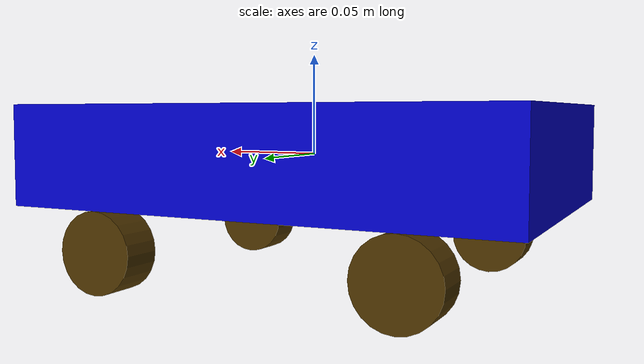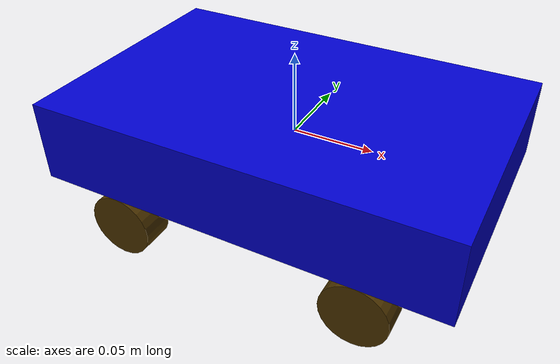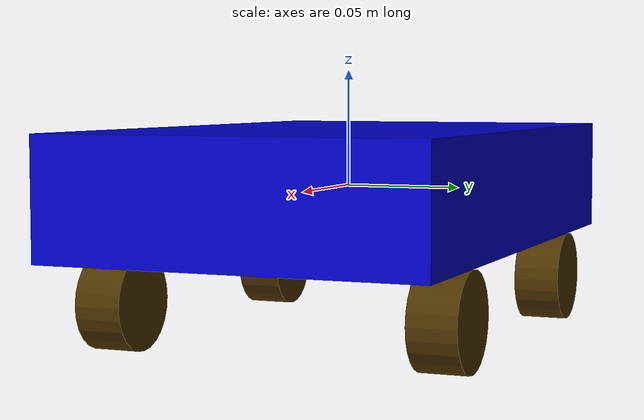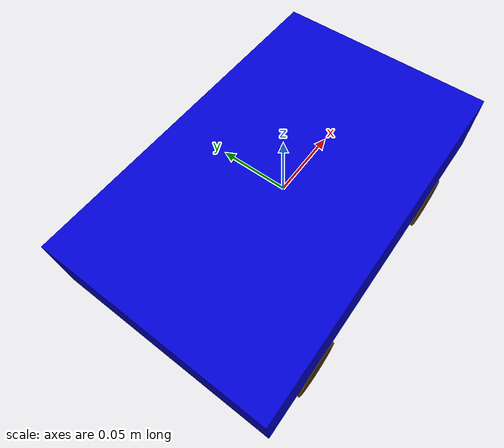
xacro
<?xml version="1.0"?>
<robot name="smartcar" xmlns:xacro="http://www.ros.org/wiki/xacro">

    <xacro:property name="length" value="0.02"/>
    <xacro:property name="radius" value="0.02"/>
    <xacro:property name="leng" value="0.25"/>
    <xacro:property name="width" value="0.16"/>
    <xacro:property name="height" value="0.05"/>

    <material name="black">
        <color rgba="0.3 0.2 0 1"/>
    </material>
    <material name="blue">
        <color rgba="0 0 .8 1"/>
    </material>

    <xacro:macro name="wheel" params="LR FB sym1 sym2 sym3">
        <link name="${LR}_${FB}_wheel">
            <visual>
                <origin xyz="0.0 0.0 0.0" rpy="1.570 0.0 0.0"/>
                <geometry>
                    <cylinder radius="${radius}" length="${length}"/>
                </geometry>
                <material name="black"/>
            </visual>
        </link>
        <joint name="joint_${LR}_${FB}_wheel" type="continuous">
            <parent link = "base_link"/>
            <child link = "${LR}_${FB}_wheel"/>
            <origin xyz = "${sym1*(leng/2-0.05)} ${sym2*(width-length)/2} ${sym3*(height/2+radius)}" rpy = "0 0 0"/>
            <axis xyz="0 1 0" />
        </joint>
     </xacro:macro>

    <link name="base_link">
        <visual>
        <geometry>
            <box size="${leng} ${width} ${height}"/>
        </geometry>
        <origin rpy="0 0 0" xyz="0 0 0"/>
        <material name="blue"/>
        </visual>
    </link>

    <xacro:wheel LR="left" FB="front" sym1="1" sym2="1" sym3="-1" />
    <xacro:wheel LR="left" FB="back" sym1="-1" sym2="1" sym3="-1" />
    <xacro:wheel LR="right" FB="front" sym1="1" sym2="-1" sym3="-1" />
    <xacro:wheel LR="right" FB="back" sym1="-1" sym2="-1" sym3="-1" />
</robot>
